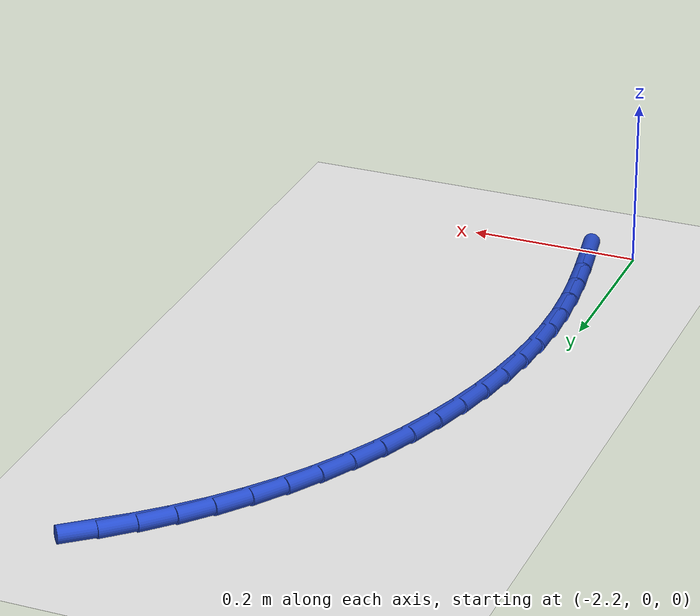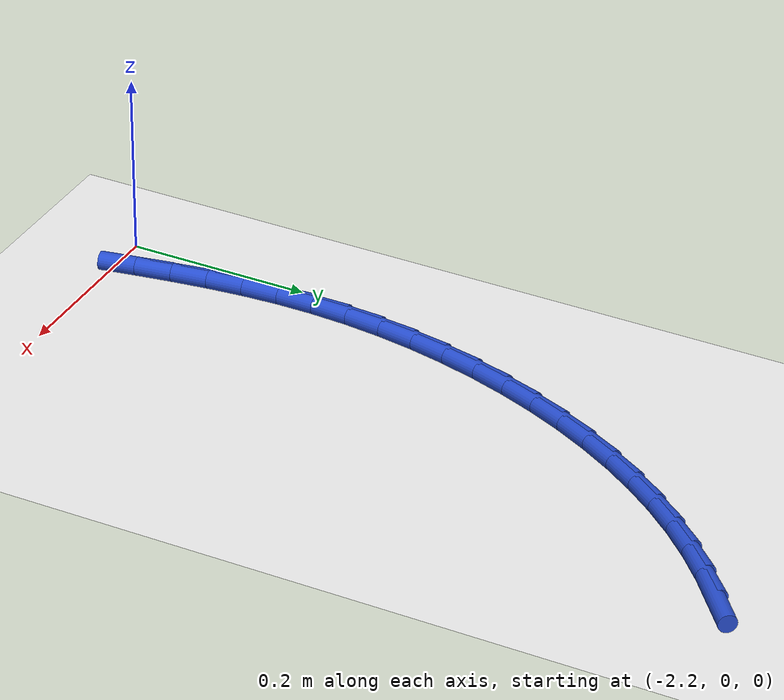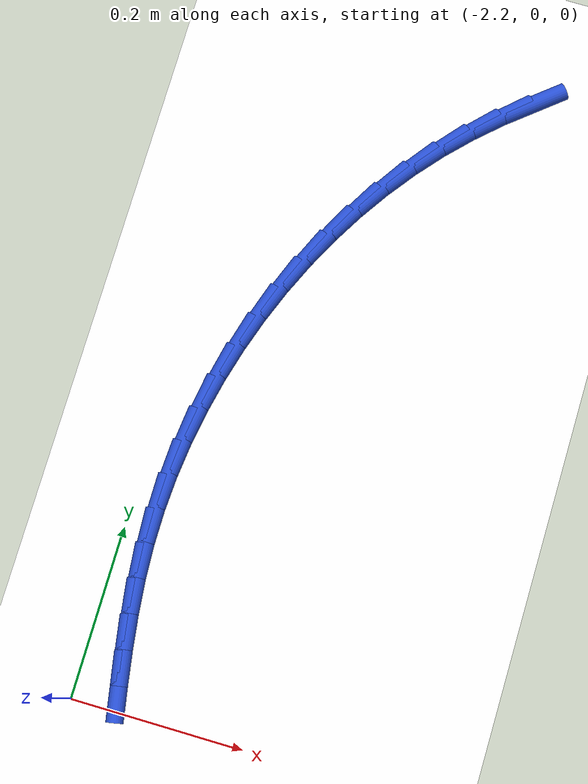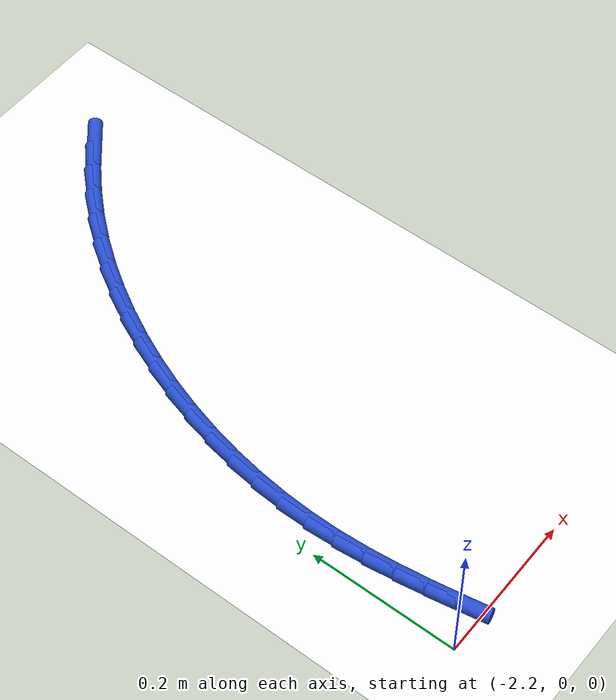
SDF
<sdf version="1.6">
 <world name="default">
  <model name="ground_plane">
   <static>1</static>
   <link name="link">
    <collision name="collision">
     <geometry><plane><normal>0 0 1</normal><size>100 100</size></plane></geometry>
     <surface><friction><ode><mu>100</mu><mu2>50</mu2></ode></friction></surface>
    </collision>
    <visual name="visual">
     <cast_shadows>0</cast_shadows>
     <geometry><plane><normal>0 0 1</normal><size>100 100</size></plane></geometry>
     <material>
      <script><uri>file://media/materials/scripts/gazebo.material</uri><name>Gazebo/WhiteGlow</name></script>
     </material>
    </visual>
   </link>
  </model>
  <model name="line">
   <link name="link_64">
    <pose>-1.8859130739772367 0.8120128514193801 0.01 0 1.57 0.6892225075739112</pose>
    <collision name="collision">
     <geometry><cylinder><radius>0.01</radius><length>0.08</length></cylinder></geometry>
    </collision>
    <visual name="visual">
     <material>
      <script><name>Gazebo/Blue</name><uri>file://media/materials/scripts/gazebo.material</uri></script>
     </material>
     <geometry><cylinder><radius>0.01</radius><length>0.08</length></cylinder></geometry>
    </visual>
   </link>
   <link name="link_65">
    <pose>-1.9177076028027213 0.7858132109580547 0.01 0 1.57 0.7473666045937405</pose>
    <collision name="collision">
     <geometry><cylinder><radius>0.01</radius><length>0.08</length></cylinder></geometry>
    </collision>
    <visual name="visual">
     <material>
      <script><name>Gazebo/Blue</name><uri>file://media/materials/scripts/gazebo.material</uri></script>
     </material>
     <geometry><cylinder><radius>0.01</radius><length>0.08</length></cylinder></geometry>
    </visual>
   </link>
   <link name="link_66">
    <pose>-1.9480440248756998 0.757700762882161 0.01 0 1.57 0.8083866247125984</pose>
    <collision name="collision">
     <geometry><cylinder><radius>0.01</radius><length>0.08</length></cylinder></geometry>
    </collision>
    <visual name="visual">
     <material>
      <script><name>Gazebo/Blue</name><uri>file://media/materials/scripts/gazebo.material</uri></script>
     </material>
     <geometry><cylinder><radius>0.01</radius><length>0.08</length></cylinder></geometry>
    </visual>
   </link>
   <link name="link_67">
    <pose>-1.97671558155799 0.7276797158193798 0.01 0 1.57 0.8703216692561468</pose>
    <collision name="collision">
     <geometry><cylinder><radius>0.01</radius><length>0.08</length></cylinder></geometry>
    </collision>
    <visual name="visual">
     <material>
      <script><name>Gazebo/Blue</name><uri>file://media/materials/scripts/gazebo.material</uri></script>
     </material>
     <geometry><cylinder><radius>0.01</radius><length>0.08</length></cylinder></geometry>
    </visual>
   </link>
   <link name="link_68">
    <pose>-2.003579967885827 0.6958159002830322 0.01 0 1.57 0.9301552253113292</pose>
    <collision name="collision">
     <geometry><cylinder><radius>0.01</radius><length>0.08</length></cylinder></geometry>
    </collision>
    <visual name="visual">
     <material>
      <script><name>Gazebo/Blue</name><uri>file://media/materials/scripts/gazebo.material</uri></script>
     </material>
     <geometry><cylinder><radius>0.01</radius><length>0.08</length></cylinder></geometry>
    </visual>
   </link>
   <link name="link_69">
    <pose>-2.028591588611781 0.6622676075364928 0.01 0 1.57 0.9878787142149448</pose>
    <collision name="collision">
     <geometry><cylinder><radius>0.01</radius><length>0.08</length></cylinder></geometry>
    </collision>
    <visual name="visual">
     <material>
      <script><name>Gazebo/Blue</name><uri>file://media/materials/scripts/gazebo.material</uri></script>
     </material>
     <geometry><cylinder><radius>0.01</radius><length>0.08</length></cylinder></geometry>
    </visual>
   </link>
   <link name="link_70">
    <pose>-2.0517128052389757 0.6272007360118037 0.01 0 1.57 1.04377891355183</pose>
    <collision name="collision">
     <geometry><cylinder><radius>0.01</radius><length>0.08</length></cylinder></geometry>
    </collision>
    <visual name="visual">
     <material>
      <script><name>Gazebo/Blue</name><uri>file://media/materials/scripts/gazebo.material</uri></script>
     </material>
     <geometry><cylinder><radius>0.01</radius><length>0.08</length></cylinder></geometry>
    </visual>
   </link>
   <link name="link_71">
    <pose>-2.072905979270533 0.5907811841410078 0.01 0 1.57 1.0981628240101502</pose>
    <collision name="collision">
     <geometry><cylinder><radius>0.01</radius><length>0.08</length></cylinder></geometry>
    </collision>
    <visual name="visual">
     <material>
      <script><name>Gazebo/Blue</name><uri>file://media/materials/scripts/gazebo.material</uri></script>
     </material>
     <geometry><cylinder><radius>0.01</radius><length>0.08</length></cylinder></geometry>
    </visual>
   </link>
   <link name="link_72">
    <pose>-2.092133472209577 0.5531748503561486 0.01 0 1.57 1.1513507728124412</pose>
    <collision name="collision">
     <geometry><cylinder><radius>0.01</radius><length>0.08</length></cylinder></geometry>
    </collision>
    <visual name="visual">
     <material>
      <script><name>Gazebo/Blue</name><uri>file://media/materials/scripts/gazebo.material</uri></script>
     </material>
     <geometry><cylinder><radius>0.01</radius><length>0.08</length></cylinder></geometry>
    </visual>
   </link>
   <link name="link_73">
    <pose>-2.10935764555923 0.5145476330892685 0.01 0 1.57 1.203672075323181</pose>
    <collision name="collision">
     <geometry><cylinder><radius>0.01</radius><length>0.08</length></cylinder></geometry>
    </collision>
    <visual name="visual">
     <material>
      <script><name>Gazebo/Blue</name><uri>file://media/materials/scripts/gazebo.material</uri></script>
     </material>
     <geometry><cylinder><radius>0.01</radius><length>0.08</length></cylinder></geometry>
    </visual>
   </link>
   <link name="link_74">
    <pose>-2.1245408608226146 0.4750654307724105 0.01 0 1.57 1.2554627073161793</pose>
    <collision name="collision">
     <geometry><cylinder><radius>0.01</radius><length>0.08</length></cylinder></geometry>
    </collision>
    <visual name="visual">
     <material>
      <script><name>Gazebo/Blue</name><uri>file://media/materials/scripts/gazebo.material</uri></script>
     </material>
     <geometry><cylinder><radius>0.01</radius><length>0.08</length></cylinder></geometry>
    </visual>
   </link>
   <link name="link_75">
    <pose>-2.1376454795028548 0.43489414183761776 0.01 0 1.57 1.3070644568133443</pose>
    <collision name="collision">
     <geometry><cylinder><radius>0.01</radius><length>0.08</length></cylinder></geometry>
    </collision>
    <visual name="visual">
     <material>
      <script><name>Gazebo/Blue</name><uri>file://media/materials/scripts/gazebo.material</uri></script>
     </material>
     <geometry><cylinder><radius>0.01</radius><length>0.08</length></cylinder></geometry>
    </visual>
   </link>
   <link name="link_76">
    <pose>-2.1486338631030732 0.39419966471693313 0.01 0 1.57 1.3588250581907952</pose>
    <collision name="collision">
     <geometry><cylinder><radius>0.01</radius><length>0.08</length></cylinder></geometry>
    </collision>
    <visual name="visual">
     <material>
      <script><name>Gazebo/Blue</name><uri>file://media/materials/scripts/gazebo.material</uri></script>
     </material>
     <geometry><cylinder><radius>0.01</radius><length>0.08</length></cylinder></geometry>
    </visual>
   </link>
   <link name="link_77">
    <pose>-2.1574683731263935 0.35314789784239914 0.01 0 1.57 1.4110988346010285</pose>
    <collision name="collision">
     <geometry><cylinder><radius>0.01</radius><length>0.08</length></cylinder></geometry>
    </collision>
    <visual name="visual">
     <material>
      <script><name>Gazebo/Blue</name><uri>file://media/materials/scripts/gazebo.material</uri></script>
     </material>
     <geometry><cylinder><radius>0.01</radius><length>0.08</length></cylinder></geometry>
    </visual>
   </link>
   <link name="link_78">
    <pose>-2.1641113710759363 0.3119047396460593 0.01 0 1.57 1.4642473699320901</pose>
    <collision name="collision">
     <geometry><cylinder><radius>0.01</radius><length>0.08</length></cylinder></geometry>
    </collision>
    <visual name="visual">
     <material>
      <script><name>Gazebo/Blue</name><uri>file://media/materials/scripts/gazebo.material</uri></script>
     </material>
     <geometry><cylinder><radius>0.01</radius><length>0.08</length></cylinder></geometry>
    </visual>
   </link>
   <link name="link_79">
    <pose>-2.1685252184548274 0.270636088559956 0.01 0 1.57 1.5186396875273767</pose>
    <collision name="collision">
     <geometry><cylinder><radius>0.01</radius><length>0.08</length></cylinder></geometry>
    </collision>
    <visual name="visual">
     <material>
      <script><name>Gazebo/Blue</name><uri>file://media/materials/scripts/gazebo.material</uri></script>
     </material>
     <geometry><cylinder><radius>0.01</radius><length>0.08</length></cylinder></geometry>
    </visual>
   </link>
   <link name="link_80">
    <pose>-2.170672276766189 0.22950784301613292 0.01 0 1.57 -1.5669746648039797</pose>
    <collision name="collision">
     <geometry><cylinder><radius>0.01</radius><length>0.08</length></cylinder></geometry>
    </collision>
    <visual name="visual">
     <material>
      <script><name>Gazebo/Blue</name><uri>file://media/materials/scripts/gazebo.material</uri></script>
     </material>
     <geometry><cylinder><radius>0.01</radius><length>0.08</length></cylinder></geometry>
    </visual>
   </link>
   <link name="link_81">
    <pose>-2.1705162649182945 0.18868500500967827 0.01 0 1.57 -1.512611220973102</pose>
    <collision name="collision">
     <geometry><cylinder><radius>0.01</radius><length>0.08</length></cylinder></geometry>
    </collision>
    <visual name="visual">
     <material>
      <script><name>Gazebo/Blue</name><uri>file://media/materials/scripts/gazebo.material</uri></script>
     </material>
     <geometry><cylinder><radius>0.01</radius><length>0.08</length></cylinder></geometry>
    </visual>
   </link>
   <link name="link_82">
    <pose>-2.1681603374137826 0.14824049259203892 0.01 0 1.57 -1.4667439732891514</pose>
    <collision name="collision">
     <geometry><cylinder><radius>0.01</radius><length>0.08</length></cylinder></geometry>
    </collision>
    <visual name="visual">
     <material>
      <script><name>Gazebo/Blue</name><uri>file://media/materials/scripts/gazebo.material</uri></script>
     </material>
     <geometry><cylinder><radius>0.01</radius><length>0.08</length></cylinder></geometry>
    </visual>
   </link>
   <link name="link_83">
    <pose>-2.1639660398862945 0.10807658105695124 0.01 0 1.57 -1.4306422613213174</pose>
    <collision name="collision">
     <geometry><cylinder><radius>0.01</radius><length>0.08</length></cylinder></geometry>
    </collision>
    <visual name="visual">
     <material>
      <script><name>Gazebo/Blue</name><uri>file://media/materials/scripts/gazebo.material</uri></script>
     </material>
     <geometry><cylinder><radius>0.01</radius><length>0.08</length></cylinder></geometry>
    </visual>
   </link>
   <link name="link_84">
    <pose>-2.1583229433557842 0.06807703759693332 0.01 0 1.57 -1.4045821976316002</pose>
    <collision name="collision">
     <geometry><cylinder><radius>0.01</radius><length>0.08</length></cylinder></geometry>
    </collision>
    <visual name="visual">
     <material>
      <script><name>Gazebo/Blue</name><uri>file://media/materials/scripts/gazebo.material</uri></script>
     </material>
     <geometry><cylinder><radius>0.01</radius><length>0.08</length></cylinder></geometry>
    </visual>
   </link>
   <link name="link_85">
    <pose>-2.1516206188422062 0.02812562940450475 0.01 0 1.57 -1.388628807504665</pose>
    <collision name="collision">
     <geometry><cylinder><radius>0.01</radius><length>0.08</length></cylinder></geometry>
    </collision>
    <visual name="visual">
     <material>
      <script><name>Gazebo/Blue</name><uri>file://media/materials/scripts/gazebo.material</uri></script>
     </material>
     <geometry><cylinder><radius>0.01</radius><length>0.08</length></cylinder></geometry>
    </visual>
   </link>
  </model>
 </world>
</sdf>
